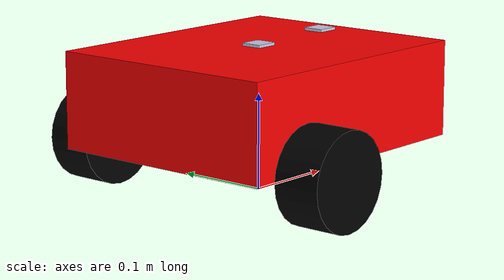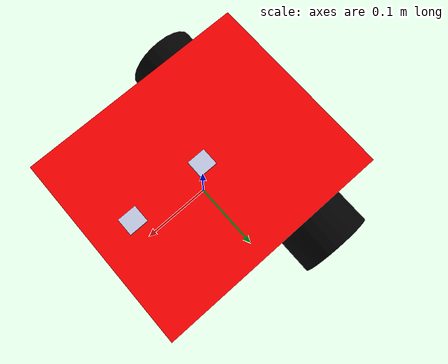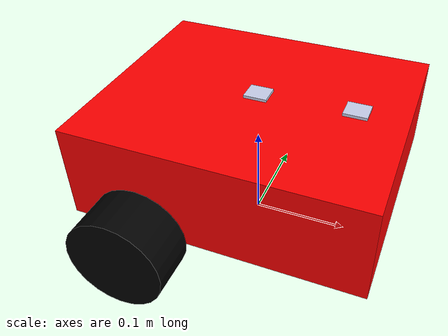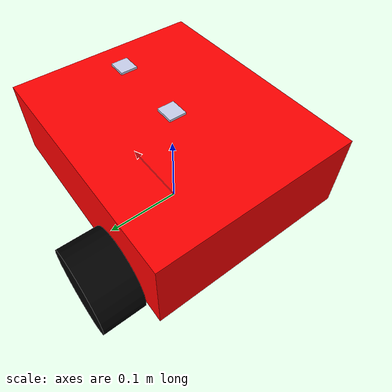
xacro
<?xml version="1.0" ?>

<robot name="vehicle" xmlns:xacro="http://www.ros.org/wiki/xacro">

    <xacro:arg name="is_ignition" default="true" />
    <xacro:include filename="$(find vehicle_description)/urdf/includes.xacro" />

    <xacro:vehicle_body />
    <xacro:vehicle_wheels parent="base_link"/>

    <xacro:imu_sensor sensor_type="vn_100" name="imu1" topic_ns="imu1" parent="base_link">
        <origin xyz="0 0 ${(body_height / 2) + 0.0015 + wheel_radius}" rpy="0 0 0"/>
    </xacro:imu_sensor>
    <xacro:imu_sensor sensor_type="vn_100" name="imu2" topic_ns="imu2" parent="base_link">
        <origin xyz="0 0 ${(body_height / 2) + 0.0015 + wheel_radius}" rpy="0 0 0"/>
    </xacro:imu_sensor>
    <xacro:imu_sensor sensor_type="vn_100" name="imu3" topic_ns="imu3" parent="base_link">
        <origin xyz="0 0 ${(body_height / 2) + 0.0015 + wheel_radius}" rpy="0 0 0"/>
    </xacro:imu_sensor>
    <xacro:navsat_sensor sensor_type="vn_200" name="gps" topic_ns="navsat" parent="base_link" >
        <origin xyz="0.1 0 ${(body_height / 2) + 0.005 + wheel_radius}" rpy="0 0 0" />
    </xacro:navsat_sensor>

</robot>

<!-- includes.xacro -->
<robot name="vehicle" xmlns:xacro="http://www.ros.org/wiki/xacro">
    <!-- Rviz Color-->
    <xacro:include filename="$(find vehicle_description)/urdf/includes/materials/rviz_materials.xacro" />

    <!-- Common 3D Inertias -->
    <xacro:include filename="$(find vehicle_description)/urdf/includes/gazebo/inertias.xacro" />

    <xacro:include filename="$(find vehicle_description)/urdf/includes/components/body/vehicle_body.xacro" />
    <!-- Caster and diff drive wheels-->
    <xacro:include filename="$(find vehicle_description)/urdf/includes/components/wheels/vehicle_wheels.xacro" />

    <!-- IMU -->
    <xacro:include filename="$(find vehicle_description)/urdf/includes/components/sensors/imu_sensor.xacro" />

    <!-- NAVSAT/GPS -->
    <xacro:include filename="$(find vehicle_description)/urdf/includes/components/sensors/navsat_sensor.xacro" />

    <!-- Gazebo configurations-->
    <xacro:include filename="$(find vehicle_description)/urdf/includes/gazebo/gazebo_system.xacro" />

</robot>

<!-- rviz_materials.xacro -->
<robot name="vehicle" xmlns:xacro="http://www.ros.org/wiki/xacro">

    <material name="blue">
        <color rgba="0 0 1 1"/>
    </material>

    <material name="black">
        <color rgba="0 0 0 1"/>
    </material>

    <material name="silver">
        <color rgba="0.79 0.82 0.93 1" />
    </material>

    <material name="red">
        <color rgba="1 0 0 1" />
    </material>

</robot>

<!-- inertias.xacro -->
<robot name="vehicle" xmlns:xacro="http://www.ros.org/wiki/xacro">

     <!-- Inertia Equations -->
     <!-- https://bit.ly/2S0aK32 -->

    <xacro:macro name="solid_cuboid_inertia" params="mass x y z">
        <inertial>
            <mass value="${mass}"/>
            <inertia ixx="${mass * (y * y + z * z) / 12}" ixy="0" ixz="0"
                     iyy="${mass * (x * x + z * z) / 12}" iyz="0"
                     izz="${mass * (x * x + y * y) / 12}"
            />
        </inertial>
    </xacro:macro>

    <xacro:macro name="cylinder_inertia" params="mass r h">
        <inertial>
            <mass value="${mass}" />
            <inertia ixx="${mass * (3 * r * r + h * h) / 12}" ixy="0" ixz="0"
                     iyy="${mass * (3 * r * r + h * h) / 12}" iyz="0"
                     izz="${mass * (r * r) / 2}"
            />
        </inertial>
    </xacro:macro>

    <xacro:macro name="sphere_inertia" params="mass r">
        <inertial>
            <mass value="${mass}" />
            <inertia ixx="${mass * (2 * r * r) / 5}" ixy="0" ixz="0"
                     iyy="${mass * (2 * r * r) / 5}" iyz="0"
                     izz="${mass * (2 * r * r) / 5}"
            />
        </inertial>
    </xacro:macro>

</robot>

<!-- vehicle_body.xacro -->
<robot name="vehicle" xmlns:xacro="http://www.ros.org/wiki/xacro">

    <!-- Vehicle Body Parameters -->
    <xacro:property name="body_width"  value="0.3" />
    <xacro:property name="body_depth"  value="0.25" />
    <xacro:property name="body_height" value="0.1" />
    <xacro:property name="body_mass" value="2" />

    <!-- WHEEL PROPERTIES-->
    <xacro:property name="wheel_radius" value="0.05"/>
    <xacro:property name="wheel_length" value="0.05" />
    <xacro:property name="wheel_mass" value="0.5" />
    <xacro:property name="caster_wheel_radius" value="0.05" />
    <xacro:property name="caster_wheel_mass" value="0.5"/>

    <xacro:macro name="vehicle_body">

        <link name="base_footprint" />

        <!-- Base Link -->
        <link name="base_link">
            <visual>
                <origin xyz="0 0 ${wheel_radius}"/>
                <geometry>
                    <box size="${body_width} ${body_depth} ${body_height}"/>
                </geometry>
                <material name="red"/>
            </visual>

            <collision>

                <origin xyz="0 0 ${wheel_radius}"/>
                <geometry>
                    <box size="${body_width} ${body_depth} ${body_height}"/>
                </geometry>
            </collision>

            <xacro:solid_cuboid_inertia mass="${body_mass}" x="${body_width}" y="${body_depth}" z="${body_height}" />
        </link>

        <joint name="base_link_joint" type="fixed">
            <parent link="base_footprint"/>
            <child link="base_link" />
            <origin xyz="0 0 ${(body_height / 2)}" rpy="0 0 0"/>

        </joint>

    </xacro:macro>

</robot>

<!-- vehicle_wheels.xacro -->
<robot name="vehicle" xmlns:xacro="http://www.ros.org/wiki/xacro">

    <xacro:macro name="vehicle_wheels" params="parent">

        <link name="rear_right_wheel">
            <visual>
                <origin xyz="0 0 0"/>
                <geometry>
                    <cylinder radius="${wheel_radius}" length="${wheel_length}"/>
                </geometry>
                <material name="black"/>
            </visual>

            <collision>
                <origin xyz="0 0 0" rpy="0 0 0"/>
                <geometry>
                    <cylinder radius="${wheel_radius}" length="${wheel_length}"/>
                </geometry>
            </collision>

            <xacro:cylinder_inertia mass="${wheel_mass}" r="${wheel_radius}" h="${wheel_length}"/>
        </link>

         <link name="rear_left_wheel">
            <visual>
                <origin xyz="0 0 0"/>
                <geometry>
                    <cylinder radius="${wheel_radius}" length="${wheel_length}"/>
                </geometry>
                <material name="black"/>
            </visual>

            <collision>
                <origin xyz="0 0 0" rpy="0 0 0"/>
                <geometry>
                    <cylinder radius="${wheel_radius}" length="${wheel_length}"/>
                </geometry>
            </collision>

            <xacro:cylinder_inertia mass="${wheel_mass}" r="${wheel_radius}" h="${wheel_length}"/>
        </link>

         <link name="front_caster_wheel">
            <visual>
                <origin xyz="0 0 0"/>
                <geometry>
                    <sphere radius="${caster_wheel_radius}"/>
                </geometry>
                <material name="black"/>
            </visual>

            <collision>
                <origin xyz="0 0 0"/>
                <geometry>
                    <sphere radius="${caster_wheel_radius}"/>
                </geometry>
            </collision>

            <xacro:sphere_inertia mass="${caster_wheel_mass}" r="${caster_wheel_radius}" />
        </link>
W
        <joint name="rear_right_wheel_joint" type="continuous">
            <parent link="${parent}"/>
            <child link="rear_right_wheel"/>

            <origin xyz="${-(body_width / 4)} ${-((body_depth / 2) + (wheel_length / 2))} 0" rpy="${pi/2} 0 0"/>
            <axis xyz="0 0 -1"/>
        </joint>

        <joint name="rear_left_wheel_joint" type="continuous">
            <parent link="${parent}"/>
            <child link="rear_left_wheel"/>
            <origin xyz="${-(body_width / 4)} ${((body_depth / 2) + (wheel_length / 2))} 0" rpy="-${pi/2} 0 0"/>
            <axis xyz="0 0 1"/>
        </joint>

        <joint name="front_caster_wheel_joint" type="fixed">
            <parent link="${parent}"/>
            <child  link="front_caster_wheel"/>
            <origin xyz="${body_width / 4} 0 0"/>
        </joint>

    </xacro:macro>

</robot>

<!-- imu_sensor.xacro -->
<robot name="vehicle" xmlns:xacro="http://www.ros.org/wiki/xacro">

    <xacro:include filename="$(find vehicle_description)/urdf/includes/components/sensors/bno055.xacro"/>
    <xacro:include filename="$(find vehicle_description)/urdf/includes/components/sensors/vn100.xacro" />

    <xacro:macro name="imu_sensor" params="sensor_type name topic_ns:=imu parent *origin">

        <xacro:if value="${sensor_type == 'vn_100'}">
            <xacro:vn_100 name="${name}" topic_ns="${topic_ns}" parent="${parent}">
                <xacro:insert_block name="origin"/>
            </xacro:vn_100>
        </xacro:if>

        <xacro:if value="${sensor_type == 'bno_055'}">
            <xacro:bno_055 name="${name}" topic_ns="${topic_ns}" parent="${parent}">
                <xacro:insert_block name="origin"/>
            </xacro:bno_055>
        </xacro:if>

    </xacro:macro>

</robot>

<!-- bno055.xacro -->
<robot name="vehicle" xmlns:xacro="http://www.ros.org/wiki/xacro">
    <!-- Gazebo IMU plugin -->
    <xacro:include filename="$(find vehicle_description)/urdf/includes/components/sensors/imu_gazebo.xacro" />

    <!-- Kaynak: https://www.mouser.com.tr/ProductDetail/Bosch-Sensortec/BNO055?qs=QhAb4EtQfbV8Z2YmISucWw%3D%3D&srsltid=AfmBOoqaJM1CKMs2fuZsgKlemHZyKtVKounwW_lcwwsTkwHkVq9O6MgB -->
    <xacro:property name="bno_depth" value="0.0052" />
    <xacro:property name="bno_width" value="0.0038" />
    <xacro:property name="bno_height" value="0.00113"/>
    <xacro:property name="bno_mass" value="0.00015"/>

    <xacro:macro name="bno_055" params="name topic_ns:=imu parent *origin">

        <joint name="${name}_joint" type="fixed">
            <parent link="${parent}"/>
            <child link="${name}_link"/>
            <xacro:insert_block name="origin" />
        </joint>

        <link name="${name}_link">
            <visual>
                <origin xyz="0 0 0"/>
                <geometry>
                    <box size="${bno_width} ${bno_depth} ${bno_height}"/>
                </geometry>
                <material name="silver" />
            </visual>

            <collision>
                <origin xyz="0 0 0"/>
                <geometry>
                    <box size="${bno_width} ${bno_depth} ${bno_height}"/>
                </geometry>
            </collision>

            <xacro:solid_cuboid_inertia mass="${bno_mass}" x="${bno_width}" y="${bno_depth}" z="${bno_height}" />
        </link>

        <xacro:imu_gazebo_bno055  imu_name="${name}" topic_ns="${topic_ns}" />

    </xacro:macro>

</robot>

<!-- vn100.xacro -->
<robot name="vehicle" xmlns:xacro="http://www.ros.org/wiki/xacro">

    <xacro:include filename="$(find vehicle_description)/urdf/includes/components/sensors/imu_gazebo.xacro" />

    <!-- VN100 CONSTANST https://www.vectornav.com/docs/default-source/product-brief/vn-100-product-brief.pdf?sfvrsn=a2a5ae5f_2 -->
    <xacro:property name="vn100_width" value="0.024" />
    <xacro:property name="vn100_depth" value="0.022" />
    <xacro:property name="vn100_height" value="0.003"/>
    <xacro:property name="vn100_mass" value="0.0035"/>

    <xacro:macro name="vn_100" params="name topic_ns:=imu parent *origin">

         <joint name="${name}_joint" type="fixed">
            <parent link="${parent}"/>
            <child link="${name}_link"/>
            <xacro:insert_block name="origin" />
        </joint>

        <link name="${name}_link">
            <visual>
                <origin xyz="0 0 0"/>
                <geometry>
                    <box size="${vn100_width} ${vn100_depth} ${vn100_height}"/>
                </geometry>
                <material name="silver" />
            </visual>

            <collision>
                <origin xyz="0 0 0"/>
                <geometry>
                    <box size="${vn100_width} ${vn100_depth} ${vn100_height}"/>
                </geometry>
            </collision>

            <xacro:solid_cuboid_inertia mass="${vn100_mass}" x="${vn100_width}" y="${vn100_depth}" z="${bno_height}" />
        </link>

        <xacro:imu_gazebo_VN100 imu_name="${name}" topic_ns="${topic_ns}" />

    </xacro:macro>

</robot>

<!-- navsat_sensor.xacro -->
<robot name="vehicle" xmlns:xacro="http://www.ros.org/wiki/xacro">

    <xacro:include filename="$(find vehicle_description)/urdf/includes/components/sensors/navsat_gazebo.xacro" />
    <xacro:include filename="$(find vehicle_description)/urdf/includes/components/sensors/vn200.xacro" />

    <xacro:macro name="navsat_sensor" params="sensor_type name topic_ns:=navsat parent *origin">

        <xacro:if value="${sensor_type == 'vn_200'}">
            <xacro:vn_200 name="${name}" topic_ns="${topic_ns}" parent="${parent}">
                <xacro:insert_block name="origin"/>
            </xacro:vn_200>
        </xacro:if>

    </xacro:macro>

</robot>

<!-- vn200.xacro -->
<robot name="vehicle" xmlns:xacro="http://www.ros.org/wiki/xacro">

    <xacro:include filename="$(find vehicle_description)/urdf/includes/components/sensors/navsat_gazebo.xacro" />

    <!-- VN200 CONSTANT https://www.vectornav.com/docs/default-source/product-brief/vn-200-product-brief.pdf?sfvrsn=5bda007a_2-->
    <xacro:property name="vn200_width" value="0.024" />
    <xacro:property name="vn200_depth" value="0.022" />
    <xacro:property name="vn200_height" value="0.003" />
    <xacro:property name="vn200_mass" value="0.004" />

    <xacro:macro name="vn_200" params="name topic_ns:=navsat parent *origin">
        <joint name="${name}_joint" type="fixed">
            <parent link="${parent}"/>
            <child link="${name}"/>
            <xacro:insert_block name="origin" />
        </joint>

        <link name="${name}">
            <visual>
                <origin xyz="0 0 0"/>
                <geometry>
                    <box size="${vn200_width} ${vn200_depth} ${vn200_height}"/>
                </geometry>
                <material name="silver"/>
            </visual>

            <collision>
                <origin xyz="0 0 0"/>
                <geometry>
                    <box size="${vn200_width} ${vn200_depth} ${vn200_height}"/>
                </geometry>
            </collision>

            <xacro:solid_cuboid_inertia mass="${vn200_mass}" x="${vn200_width}" y="${vn200_depth}" z="${vn200_height}" />
        </link>

        <xacro:navsat_gazebo navsat_name="${name}" topic_ns="${topic_ns}"/>

    </xacro:macro>

</robot>
